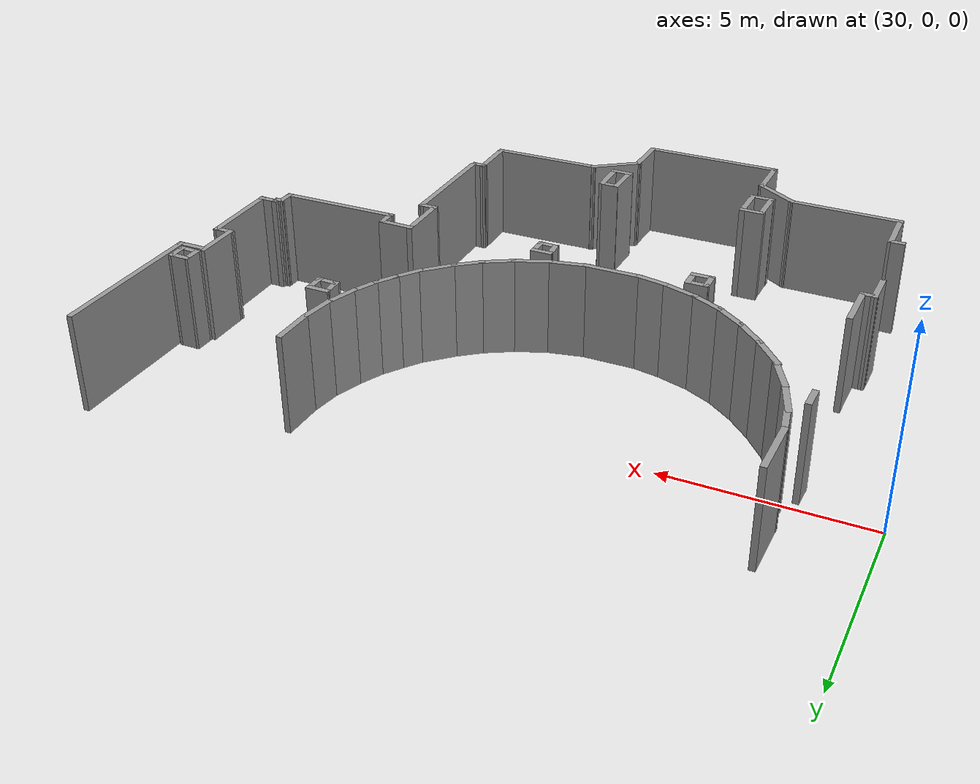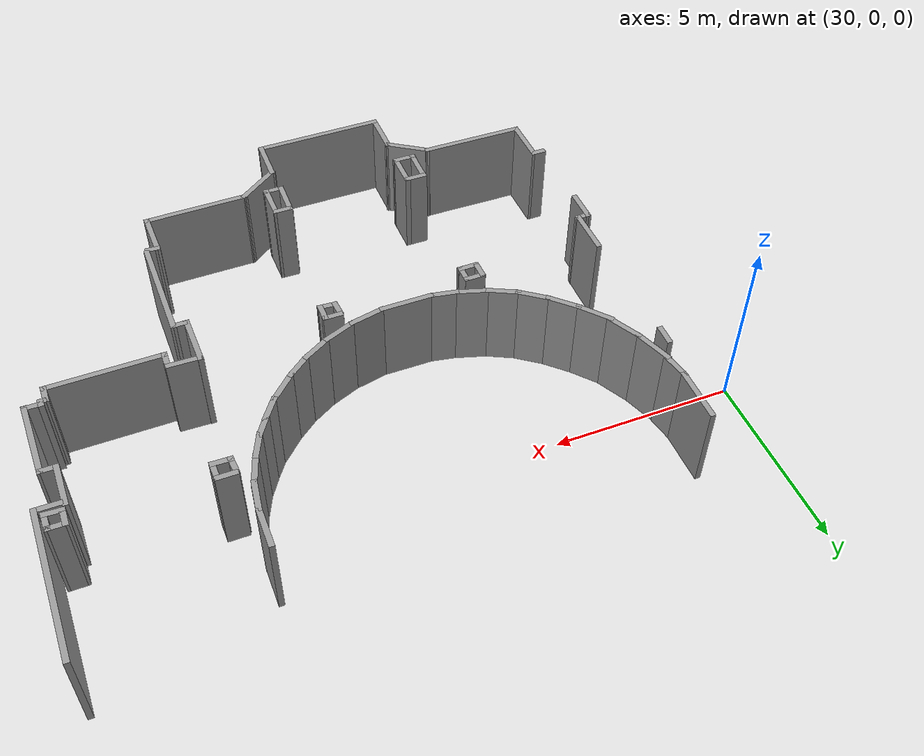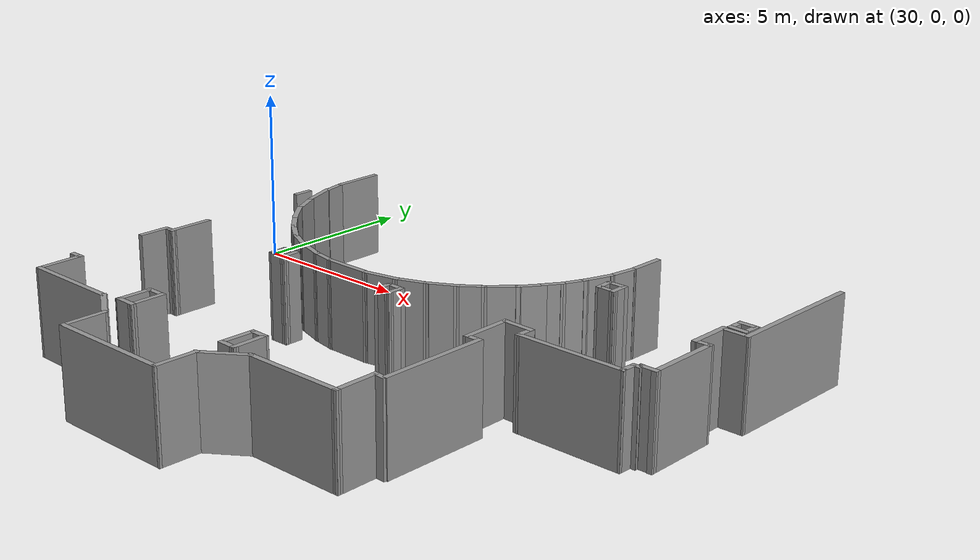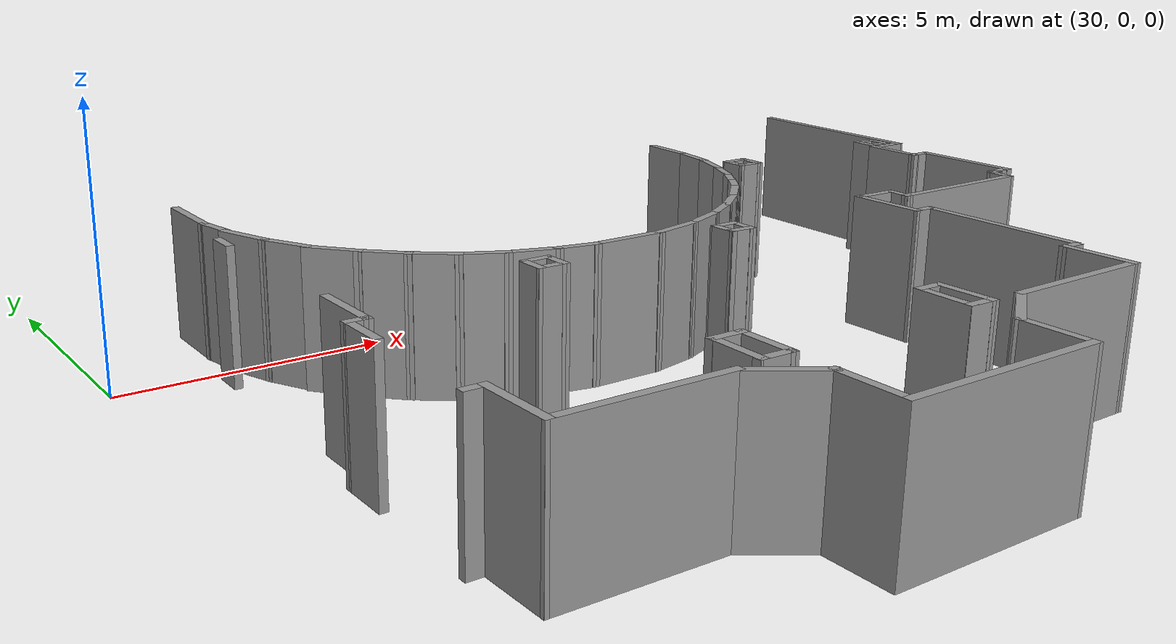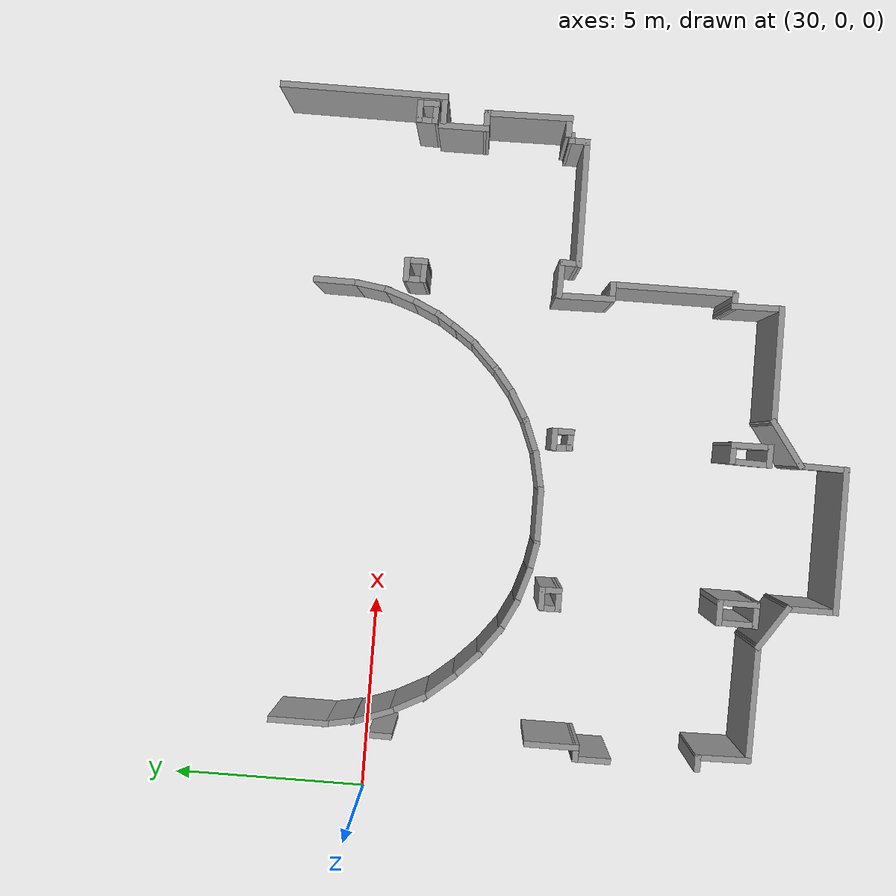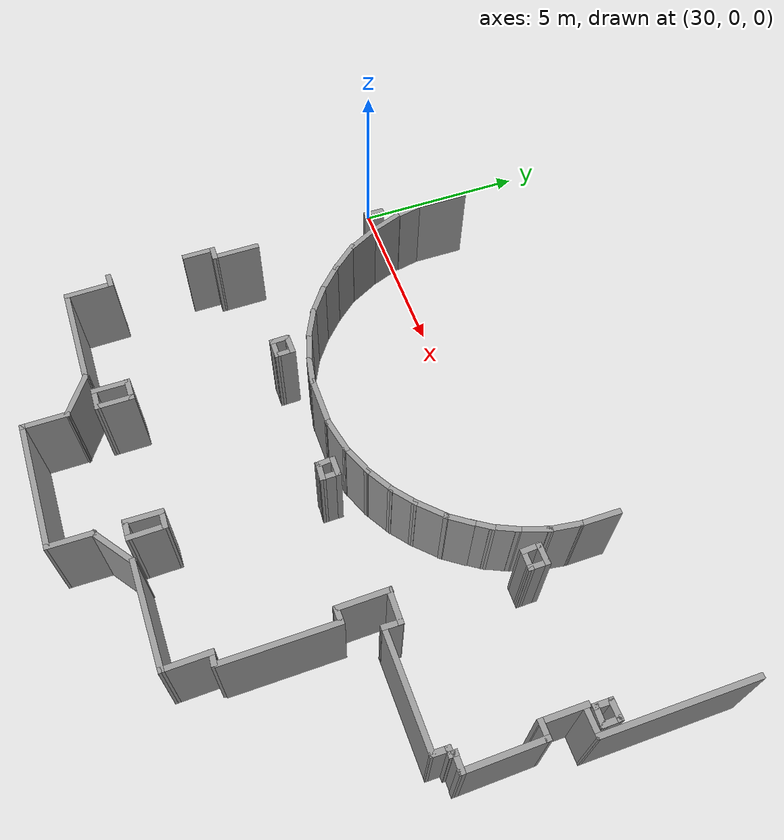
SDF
<sdf version="1.7">
 <model name="TD1-Mapa">
  <pose>-6.249136 -5.50363 0 0 -0 0</pose>
  <link name="Wall_593">
   <collision name="Wall_593_Collision">
    <geometry><box><size>1.372032 0.15 2.5</size></box></geometry>
    <pose>0 0 1.25 0 -0 0</pose>
   </collision>
   <visual name="Wall_593_Visual">
    <pose>0 0 1.25 0 -0 0</pose>
    <geometry><box><size>1.372032 0.15 2.5</size></box></geometry>
    <material>
     <script><uri>file://media/materials/scripts/gazebo.material</uri><name>Gazebo/Grey</name></script>
     <ambient>1 1 1 1</ambient>
    </material>
    <meta><layer>0</layer></meta>
   </visual>
   <pose>38.25353 0.7369343 0 0 -0 -1.57083</pose>
  </link>
  <link name="Wall_594">
   <collision name="Wall_594_Collision">
    <geometry><box><size>0.43123033 0.15 2.5</size></box></geometry>
    <pose>0 0 1.25 0 -0 0</pose>
   </collision>
   <visual name="Wall_594_Visual">
    <pose>0 0 1.25 0 -0 0</pose>
    <geometry><box><size>0.43123033 0.15 2.5</size></box></geometry>
    <material>
     <script><uri>file://media/materials/scripts/gazebo.material</uri><name>Gazebo/Grey</name></script>
     <ambient>1 1 1 1</ambient>
    </material>
    <meta><layer>0</layer></meta>
   </visual>
   <pose>38.11253 0.1288373 0 0 -0 3.120736</pose>
  </link>
  <link name="Wall_595">
   <collision name="Wall_595_Collision">
    <geometry><box><size>0.9607363 0.15 2.5</size></box></geometry>
    <pose>0 0 1.25 0 -0 0</pose>
   </collision>
   <visual name="Wall_595_Visual">
    <pose>0 0 1.25 0 -0 0</pose>
    <geometry><box><size>0.9607363 0.15 2.5</size></box></geometry>
    <material>
     <script><uri>file://media/materials/scripts/gazebo.material</uri><name>Gazebo/Grey</name></script>
     <ambient>1 1 1 1</ambient>
    </material>
    <meta><layer>0</layer></meta>
   </visual>
   <pose>37.97153 -0.2735373 0 0 -0 -1.57083</pose>
  </link>
  <link name="Wall_634">
   <collision name="Wall_634_Collision">
    <geometry><box><size>4.180331 0.15 2.5</size></box></geometry>
    <pose>0 0 1.25 0 -0 0</pose>
   </collision>
   <visual name="Wall_634_Visual">
    <pose>0 0 1.25 0 -0 0</pose>
    <geometry><box><size>4.180331 0.15 2.5</size></box></geometry>
    <material>
     <script><uri>file://media/materials/scripts/gazebo.material</uri><name>Gazebo/Grey</name></script>
     <ambient>1 1 1 1</ambient>
    </material>
    <meta><layer>0</layer></meta>
   </visual>
   <pose>54.08333 6.601134 0 0 -0 -1.573731</pose>
  </link>
  <link name="Wall_635">
   <collision name="Wall_635_Collision">
    <geometry><box><size>0.75 0.15 2.5</size></box></geometry>
    <pose>0 0 1.25 0 -0 0</pose>
   </collision>
   <visual name="Wall_635_Visual">
    <pose>0 0 1.25 0 -0 0</pose>
    <geometry><box><size>0.75 0.15 2.5</size></box></geometry>
    <material>
     <script><uri>file://media/materials/scripts/gazebo.material</uri><name>Gazebo/Grey</name></script>
     <ambient>1 1 1 1</ambient>
    </material>
    <meta><layer>0</layer></meta>
   </visual>
   <pose>53.77743 4.585939 0 0 -0 3.141539</pose>
  </link>
  <link name="Wall_637">
   <collision name="Wall_637_Collision">
    <geometry><box><size>1.269238 0.15 2.5</size></box></geometry>
    <pose>0 0 1.25 0 -0 0</pose>
   </collision>
   <visual name="Wall_637_Visual">
    <pose>0 0 1.25 0 -0 0</pose>
    <geometry><box><size>1.269238 0.15 2.5</size></box></geometry>
    <material>
     <script><uri>file://media/materials/scripts/gazebo.material</uri><name>Gazebo/Grey</name></script>
     <ambient>1 1 1 1</ambient>
    </material>
    <meta><layer>0</layer></meta>
   </visual>
   <pose>53.36673 4.0743393 0 0 -0 -1.57083</pose>
  </link>
  <link name="Wall_638">
   <collision name="Wall_638_Collision">
    <geometry><box><size>0.5352333 0.15 2.5</size></box></geometry>
    <pose>0 0 1.25 0 -0 0</pose>
   </collision>
   <visual name="Wall_638_Visual">
    <pose>0 0 1.25 0 -0 0</pose>
    <geometry><box><size>0.5352333 0.15 2.5</size></box></geometry>
    <material>
     <script><uri>file://media/materials/scripts/gazebo.material</uri><name>Gazebo/Grey</name></script>
     <ambient>1 1 1 1</ambient>
    </material>
    <meta><layer>0</layer></meta>
   </visual>
   <pose>53.55933 3.51533 0 0 -0 0.0040313</pose>
  </link>
  <link name="Wall_639">
   <collision name="Wall_639_Collision">
    <geometry><box><size>2.206431 0.15 2.5</size></box></geometry>
    <pose>0 0 1.25 0 -0 0</pose>
   </collision>
   <visual name="Wall_639_Visual">
    <pose>0 0 1.25 0 -0 0</pose>
    <geometry><box><size>2.206431 0.15 2.5</size></box></geometry>
    <material>
     <script><uri>file://media/materials/scripts/gazebo.material</uri><name>Gazebo/Grey</name></script>
     <ambient>1 1 1 1</ambient>
    </material>
    <meta><layer>0</layer></meta>
   </visual>
   <pose>53.76373 2.487934 0 0 -0 -1.559337</pose>
  </link>
  <link name="Wall_641">
   <collision name="Wall_641_Collision">
    <geometry><box><size>0.5379333 0.15 2.5</size></box></geometry>
    <pose>0 0 1.25 0 -0 0</pose>
   </collision>
   <visual name="Wall_641_Visual">
    <pose>0 0 1.25 0 -0 0</pose>
    <geometry><box><size>0.5379333 0.15 2.5</size></box></geometry>
    <material>
     <script><uri>file://media/materials/scripts/gazebo.material</uri><name>Gazebo/Grey</name></script>
     <ambient>1 1 1 1</ambient>
    </material>
    <meta><layer>0</layer></meta>
   </visual>
   <pose>53.58163 1.471535 0 0 -0 3.141539</pose>
  </link>
  <link name="Wall_643">
   <collision name="Wall_643_Collision">
    <geometry><box><size>0.2473333 0.15 2.5</size></box></geometry>
    <pose>0 0 1.25 0 -0 0</pose>
   </collision>
   <visual name="Wall_643_Visual">
    <pose>0 0 1.25 0 -0 0</pose>
    <geometry><box><size>0.2473333 0.15 2.5</size></box></geometry>
    <material>
     <script><uri>file://media/materials/scripts/gazebo.material</uri><name>Gazebo/Grey</name></script>
     <ambient>1 1 1 1</ambient>
    </material>
    <meta><layer>0</layer></meta>
   </visual>
   <pose>53.36713 1.4311373 0 0 -0 -1.57083</pose>
  </link>
  <link name="Wall_644">
   <collision name="Wall_644_Collision">
    <geometry><box><size>0.2845333 0.15 2.5</size></box></geometry>
    <pose>0 0 1.25 0 -0 0</pose>
   </collision>
   <visual name="Wall_644_Visual">
    <pose>0 0 1.25 0 -0 0</pose>
    <geometry><box><size>0.2845333 0.15 2.5</size></box></geometry>
    <material>
     <script><uri>file://media/materials/scripts/gazebo.material</uri><name>Gazebo/Grey</name></script>
     <ambient>1 1 1 1</ambient>
    </material>
    <meta><layer>0</layer></meta>
   </visual>
   <pose>53.29993 1.384735 0 0 -0 -3.091633</pose>
  </link>
  <link name="Wall_645">
   <collision name="Wall_645_Collision">
    <geometry><box><size>0.5331373 0.15 2.5</size></box></geometry>
    <pose>0 0 1.25 0 -0 0</pose>
   </collision>
   <visual name="Wall_645_Visual">
    <pose>0 0 1.25 0 -0 0</pose>
    <geometry><box><size>0.5331373 0.15 2.5</size></box></geometry>
    <material>
     <script><uri>file://media/materials/scripts/gazebo.material</uri><name>Gazebo/Grey</name></script>
     <ambient>1 1 1 1</ambient>
    </material>
    <meta><layer>0</layer></meta>
   </visual>
   <pose>53.22933 1.189932 0 0 -0 -1.588334</pose>
  </link>
  <link name="Wall_646">
   <collision name="Wall_646_Collision">
    <geometry><box><size>3.179937 0.15 2.5</size></box></geometry>
    <pose>0 0 1.25 0 -0 0</pose>
   </collision>
   <visual name="Wall_646_Visual">
    <pose>0 0 1.25 0 -0 0</pose>
    <geometry><box><size>3.179937 0.15 2.5</size></box></geometry>
    <material>
     <script><uri>file://media/materials/scripts/gazebo.material</uri><name>Gazebo/Grey</name></script>
     <ambient>1 1 1 1</ambient>
    </material>
    <meta><layer>0</layer></meta>
   </visual>
   <pose>51.711 0.9883373 0 0 -0 -3.134934</pose>
  </link>
  <link name="Wall_647">
   <collision name="Wall_647_Collision">
    <geometry><box><size>0.5331373 0.15 2.5</size></box></geometry>
    <pose>0 0 1.25 0 -0 0</pose>
   </collision>
   <visual name="Wall_647_Visual">
    <pose>0 0 1.25 0 -0 0</pose>
    <geometry><box><size>0.5331373 0.15 2.5</size></box></geometry>
    <material>
     <script><uri>file://media/materials/scripts/gazebo.material</uri><name>Gazebo/Grey</name></script>
     <ambient>1 1 1 1</ambient>
    </material>
    <meta><layer>0</layer></meta>
   </visual>
   <pose>50.20283 1.169737 0 0 -0 1.535732</pose>
  </link>
  <link name="Wall_651">
   <collision name="Wall_651_Collision">
    <geometry><box><size>0.43143333 0.15 2.5</size></box></geometry>
    <pose>0 0 1.25 0 -0 0</pose>
   </collision>
   <visual name="Wall_651_Visual">
    <pose>0 0 1.25 0 -0 0</pose>
    <geometry><box><size>0.43143333 0.15 2.5</size></box></geometry>
    <material>
     <script><uri>file://media/materials/scripts/gazebo.material</uri><name>Gazebo/Grey</name></script>
     <ambient>1 1 1 1</ambient>
    </material>
    <meta><layer>0</layer></meta>
   </visual>
   <pose>38.09973 -2.902133 0 0 -0 0</pose>
  </link>
  <link name="Wall_652">
   <collision name="Wall_652_Collision">
    <geometry><box><size>1.394 0.15 2.5</size></box></geometry>
    <pose>0 0 1.25 0 -0 0</pose>
   </collision>
   <visual name="Wall_652_Visual">
    <pose>0 0 1.25 0 -0 0</pose>
    <geometry><box><size>1.394 0.15 2.5</size></box></geometry>
    <material>
     <script><uri>file://media/materials/scripts/gazebo.material</uri><name>Gazebo/Grey</name></script>
     <ambient>1 1 1 1</ambient>
    </material>
    <meta><layer>0</layer></meta>
   </visual>
   <pose>38.25083 -3.524037 0 0 -0 -1.556531</pose>
  </link>
  <link name="Wall_653">
   <collision name="Wall_653_Collision">
    <geometry><box><size>2.975539 0.15 2.5</size></box></geometry>
    <pose>0 0 1.25 0 -0 0</pose>
   </collision>
   <visual name="Wall_653_Visual">
    <pose>0 0 1.25 0 -0 0</pose>
    <geometry><box><size>2.975539 0.15 2.5</size></box></geometry>
    <material>
     <script><uri>file://media/materials/scripts/gazebo.material</uri><name>Gazebo/Grey</name></script>
     <ambient>1 1 1 1</ambient>
    </material>
    <meta><layer>0</layer></meta>
   </visual>
   <pose>39.67233 -4.163738 0 0 -0 -0.0125373</pose>
  </link>
  <link name="Wall_654">
   <collision name="Wall_654_Collision">
    <geometry><box><size>1.352537 0.15 2.5</size></box></geometry>
    <pose>0 0 1.25 0 -0 0</pose>
   </collision>
   <visual name="Wall_654_Visual">
    <pose>0 0 1.25 0 -0 0</pose>
    <geometry><box><size>1.352537 0.15 2.5</size></box></geometry>
    <material>
     <script><uri>file://media/materials/scripts/gazebo.material</uri><name>Gazebo/Grey</name></script>
     <ambient>1 1 1 1</ambient>
    </material>
    <meta><layer>0</layer></meta>
   </visual>
   <pose>41.58263 -4.519137 0 0 -0 -0.5961393</pose>
  </link>
  <link name="Wall_655">
   <collision name="Wall_655_Collision">
    <geometry><box><size>1.322739 0.15 2.5</size></box></geometry>
    <pose>0 0 1.25 0 -0 0</pose>
   </collision>
   <visual name="Wall_655_Visual">
    <pose>0 0 1.25 0 -0 0</pose>
    <geometry><box><size>1.322739 0.15 2.5</size></box></geometry>
    <material>
     <script><uri>file://media/materials/scripts/gazebo.material</uri><name>Gazebo/Grey</name></script>
     <ambient>1 1 1 1</ambient>
    </material>
    <meta><layer>0</layer></meta>
   </visual>
   <pose>42.08013 -5.443139 0 0 -0 -1.57083</pose>
  </link>
  <link name="Wall_656">
   <collision name="Wall_656_Collision">
    <geometry><box><size>3.686135 0.15 2.5</size></box></geometry>
    <pose>0 0 1.25 0 -0 0</pose>
   </collision>
   <visual name="Wall_656_Visual">
    <pose>0 0 1.25 0 -0 0</pose>
    <geometry><box><size>3.686135 0.15 2.5</size></box></geometry>
    <material>
     <script><uri>file://media/materials/scripts/gazebo.material</uri><name>Gazebo/Grey</name></script>
     <ambient>1 1 1 1</ambient>
    </material>
    <meta><layer>0</layer></meta>
   </visual>
   <pose>43.84823 -6.029539 0 0 -0 0</pose>
  </link>
  <link name="Wall_657">
   <collision name="Wall_657_Collision">
    <geometry><box><size>1.28743 0.15 2.5</size></box></geometry>
    <pose>0 0 1.25 0 -0 0</pose>
   </collision>
   <visual name="Wall_657_Visual">
    <pose>0 0 1.25 0 -0 0</pose>
    <geometry><box><size>1.28743 0.15 2.5</size></box></geometry>
    <material>
     <script><uri>file://media/materials/scripts/gazebo.material</uri><name>Gazebo/Grey</name></script>
     <ambient>1 1 1 1</ambient>
    </material>
    <meta><layer>0</layer></meta>
   </visual>
   <pose>45.62523 -5.460936 0 0 -0 1.555137</pose>
  </link>
  <link name="Wall_658">
   <collision name="Wall_658_Collision">
    <geometry><box><size>1.422438 0.15 2.5</size></box></geometry>
    <pose>0 0 1.25 0 -0 0</pose>
   </collision>
   <visual name="Wall_658_Visual">
    <pose>0 0 1.25 0 -0 0</pose>
    <geometry><box><size>1.422438 0.15 2.5</size></box></geometry>
    <material>
     <script><uri>file://media/materials/scripts/gazebo.material</uri><name>Gazebo/Grey</name></script>
     <ambient>1 1 1 1</ambient>
    </material>
    <meta><layer>0</layer></meta>
   </visual>
   <pose>46.14943 -4.519137 0 0 -0 0.6267343</pose>
  </link>
  <link name="Wall_659">
   <collision name="Wall_659_Collision">
    <geometry><box><size>2.957636 0.15 2.5</size></box></geometry>
    <pose>0 0 1.25 0 -0 0</pose>
   </collision>
   <visual name="Wall_659_Visual">
    <pose>0 0 1.25 0 -0 0</pose>
    <geometry><box><size>2.957636 0.15 2.5</size></box></geometry>
    <material>
     <script><uri>file://media/materials/scripts/gazebo.material</uri><name>Gazebo/Grey</name></script>
     <ambient>1 1 1 1</ambient>
    </material>
    <meta><layer>0</layer></meta>
   </visual>
   <pose>48.06853 -4.137132 0 0 -0 0.0063323</pose>
  </link>
  <link name="Wall_660">
   <collision name="Wall_660_Collision">
    <geometry><box><size>1.340537 0.15 2.5</size></box></geometry>
    <pose>0 0 1.25 0 -0 0</pose>
   </collision>
   <visual name="Wall_660_Visual">
    <pose>0 0 1.25 0 -0 0</pose>
    <geometry><box><size>1.340537 0.15 2.5</size></box></geometry>
    <material>
     <script><uri>file://media/materials/scripts/gazebo.material</uri><name>Gazebo/Grey</name></script>
     <ambient>1 1 1 1</ambient>
    </material>
    <meta><layer>0</layer></meta>
   </visual>
   <pose>49.46343 -3.532935 0 0 -0 1.585732</pose>
  </link>
  <link name="Wall_661">
   <collision name="Wall_661_Collision">
    <geometry><box><size>0.4171333 0.15 2.5</size></box></geometry>
    <pose>0 0 1.25 0 -0 0</pose>
   </collision>
   <visual name="Wall_661_Visual">
    <pose>0 0 1.25 0 -0 0</pose>
    <geometry><box><size>0.4171333 0.15 2.5</size></box></geometry>
    <material>
     <script><uri>file://media/materials/scripts/gazebo.material</uri><name>Gazebo/Grey</name></script>
     <ambient>1 1 1 1</ambient>
    </material>
    <meta><layer>0</layer></meta>
   </visual>
   <pose>49.58783 -2.946536 0 0 -0 -0.0665363</pose>
  </link>
  <link name="Wall_663">
   <collision name="Wall_663_Collision">
    <geometry><box><size>0.949833 0.15 2.5</size></box></geometry>
    <pose>0 0 1.25 0 -0 0</pose>
   </collision>
   <visual name="Wall_663_Visual">
    <pose>0 0 1.25 0 -0 0</pose>
    <geometry><box><size>0.949833 0.15 2.5</size></box></geometry>
    <material>
     <script><uri>file://media/materials/scripts/gazebo.material</uri><name>Gazebo/Grey</name></script>
     <ambient>1 1 1 1</ambient>
    </material>
    <meta><layer>0</layer></meta>
   </visual>
   <pose>49.80173 1.392838 0 0 -0 -0.0222313</pose>
  </link>
  <link name="Wall_665">
   <collision name="Wall_665_Collision">
    <geometry><box><size>1.482834 0.15 2.5</size></box></geometry>
    <pose>0 0 1.25 0 -0 0</pose>
   </collision>
   <visual name="Wall_665_Visual">
    <pose>0 0 1.25 0 -0 0</pose>
    <geometry><box><size>1.482834 0.15 2.5</size></box></geometry>
    <material>
     <script><uri>file://media/materials/scripts/gazebo.material</uri><name>Gazebo/Grey</name></script>
     <ambient>1 1 1 1</ambient>
    </material>
    <meta><layer>0</layer></meta>
   </visual>
   <pose>49.39233 0.7495323 0 0 -0 -1.557436</pose>
  </link>
  <link name="Wall_666">
   <collision name="Wall_666_Collision">
    <geometry><box><size>0.5053393 0.15 2.5</size></box></geometry>
    <pose>0 0 1.25 0 -0 0</pose>
   </collision>
   <visual name="Wall_666_Visual">
    <pose>0 0 1.25 0 -0 0</pose>
    <geometry><box><size>0.5053393 0.15 2.5</size></box></geometry>
    <material>
     <script><uri>file://media/materials/scripts/gazebo.material</uri><name>Gazebo/Grey</name></script>
     <ambient>1 1 1 1</ambient>
    </material>
    <meta><layer>0</layer></meta>
   </visual>
   <pose>49.57893 0.0831363 0 0 -0 0</pose>
  </link>
  <link name="Wall_667">
   <collision name="Wall_667_Collision">
    <geometry><box><size>3.117533 0.15 2.5</size></box></geometry>
    <pose>0 0 1.25 0 -0 0</pose>
   </collision>
   <visual name="Wall_667_Visual">
    <pose>0 0 1.25 0 -0 0</pose>
    <geometry><box><size>3.117533 0.15 2.5</size></box></geometry>
    <material>
     <script><uri>file://media/materials/scripts/gazebo.material</uri><name>Gazebo/Grey</name></script>
     <ambient>1 1 1 1</ambient>
    </material>
    <meta><layer>0</layer></meta>
   </visual>
   <pose>49.75663 -1.40063 0 0 -0 -1.57083</pose>
  </link>
  <link name="Wall_669">
   <collision name="Wall_669_Collision">
    <geometry><box><size>0.6579393 0.15 2.5</size></box></geometry>
    <pose>0 0 1.25 0 -0 0</pose>
   </collision>
   <visual name="Wall_669_Visual">
    <pose>0 0 1.25 0 -0 0</pose>
    <geometry><box><size>0.6579393 0.15 2.5</size></box></geometry>
    <material>
     <script><uri>file://media/materials/scripts/gazebo.material</uri><name>Gazebo/Grey</name></script>
     <ambient>1 1 1 1</ambient>
    </material>
    <meta><layer>0</layer></meta>
   </visual>
   <pose>41.85793 -3.16043 0 0 -0 0</pose>
  </link>
  <link name="Wall_670">
   <collision name="Wall_670_Collision">
    <geometry><box><size>1.064839 0.15 2.5</size></box></geometry>
    <pose>0 0 1.25 0 -0 0</pose>
   </collision>
   <visual name="Wall_670_Visual">
    <pose>0 0 1.25 0 -0 0</pose>
    <geometry><box><size>1.064839 0.15 2.5</size></box></geometry>
    <material>
     <script><uri>file://media/materials/scripts/gazebo.material</uri><name>Gazebo/Grey</name></script>
     <ambient>1 1 1 1</ambient>
    </material>
    <meta><layer>0</layer></meta>
   </visual>
   <pose>42.11193 -3.617539 0 0 -0 -1.57083</pose>
  </link>
  <link name="Wall_671">
   <collision name="Wall_671_Collision">
    <geometry><box><size>0.6682353 0.15 2.5</size></box></geometry>
    <pose>0 0 1.25 0 -0 0</pose>
   </collision>
   <visual name="Wall_671_Visual">
    <pose>0 0 1.25 0 -0 0</pose>
    <geometry><box><size>0.6682353 0.15 2.5</size></box></geometry>
    <material>
     <script><uri>file://media/materials/scripts/gazebo.material</uri><name>Gazebo/Grey</name></script>
     <ambient>1 1 1 1</ambient>
    </material>
    <meta><layer>0</layer></meta>
   </visual>
   <pose>41.85283 -4.069731 0 0 -0 3.121939</pose>
  </link>
  <link name="Wall_672">
   <collision name="Wall_672_Collision">
    <geometry><box><size>0.9933323 0.15 2.5</size></box></geometry>
    <pose>0 0 1.25 0 -0 0</pose>
   </collision>
   <visual name="Wall_672_Visual">
    <pose>0 0 1.25 0 -0 0</pose>
    <geometry><box><size>0.9933323 0.15 2.5</size></box></geometry>
    <material>
     <script><uri>file://media/materials/scripts/gazebo.material</uri><name>Gazebo/Grey</name></script>
     <ambient>1 1 1 1</ambient>
    </material>
    <meta><layer>0</layer></meta>
   </visual>
   <pose>41.609 -3.642939 0 0 -0 1.558735</pose>
  </link>
  <link name="Wall_674">
   <collision name="Wall_674_Collision">
    <geometry><box><size>0.5869393 0.15 2.5</size></box></geometry>
    <pose>0 0 1.25 0 -0 0</pose>
   </collision>
   <visual name="Wall_674_Visual">
    <pose>0 0 1.25 0 -0 0</pose>
    <geometry><box><size>0.5869393 0.15 2.5</size></box></geometry>
    <material>
     <script><uri>file://media/materials/scripts/gazebo.material</uri><name>Gazebo/Grey</name></script>
     <ambient>1 1 1 1</ambient>
    </material>
    <meta><layer>0</layer></meta>
   </visual>
   <pose>45.81523 -4.110334 0 0 -0 -0.0232353</pose>
  </link>
  <link name="Wall_675">
   <collision name="Wall_675_Collision">
    <geometry><box><size>1.064631 0.15 2.5</size></box></geometry>
    <pose>0 0 1.25 0 -0 0</pose>
   </collision>
   <visual name="Wall_675_Visual">
    <pose>0 0 1.25 0 -0 0</pose>
    <geometry><box><size>1.064631 0.15 2.5</size></box></geometry>
    <material>
     <script><uri>file://media/materials/scripts/gazebo.material</uri><name>Gazebo/Grey</name></script>
     <ambient>1 1 1 1</ambient>
    </material>
    <meta><layer>0</layer></meta>
   </visual>
   <pose>46.02853 -3.658233 0 0 -0 1.581931</pose>
  </link>
  <link name="Wall_676">
   <collision name="Wall_676_Collision">
    <geometry><box><size>0.5463363 0.15 2.5</size></box></geometry>
    <pose>0 0 1.25 0 -0 0</pose>
   </collision>
   <visual name="Wall_676_Visual">
    <pose>0 0 1.25 0 -0 0</pose>
    <geometry><box><size>0.5463363 0.15 2.5</size></box></geometry>
    <material>
     <script><uri>file://media/materials/scripts/gazebo.material</uri><name>Gazebo/Grey</name></script>
     <ambient>1 1 1 1</ambient>
    </material>
    <meta><layer>0</layer></meta>
   </visual>
   <pose>45.82533 -3.195936 0 0 -0 3.115936</pose>
  </link>
  <link name="Wall_677">
   <collision name="Wall_677_Collision">
    <geometry><box><size>1.054435 0.15 2.5</size></box></geometry>
    <pose>0 0 1.25 0 -0 0</pose>
   </collision>
   <visual name="Wall_677_Visual">
    <pose>0 0 1.25 0 -0 0</pose>
    <geometry><box><size>1.054435 0.15 2.5</size></box></geometry>
    <material>
     <script><uri>file://media/materials/scripts/gazebo.material</uri><name>Gazebo/Grey</name></script>
     <ambient>1 1 1 1</ambient>
    </material>
    <meta><layer>0</layer></meta>
   </visual>
   <pose>45.60693 -3.642939 0 0 -0 -1.593236</pose>
  </link>
  <link name="Wall_689">
   <collision name="Wall_689_Collision">
    <geometry><box><size>1.51523 0.15 2.5</size></box></geometry>
    <pose>0 0 1.25 0 -0 0</pose>
   </collision>
   <visual name="Wall_689_Visual">
    <pose>0 0 1.25 0 -0 0</pose>
    <geometry><box><size>1.51523 0.15 2.5</size></box></geometry>
    <material>
     <script><uri>file://media/materials/scripts/gazebo.material</uri><name>Gazebo/Grey</name></script>
     <ambient>1 1 1 1</ambient>
    </material>
    <meta><layer>0</layer></meta>
   </visual>
   <pose>38.37753 7.042533 0 0 -0 -1.574935</pose>
  </link>
  <link name="Wall_690">
   <collision name="Wall_690_Collision">
    <geometry><box><size>0.791031 0.15 2.5</size></box></geometry>
    <pose>0 0 1.25 0 -0 0</pose>
   </collision>
   <visual name="Wall_690_Visual">
    <pose>0 0 1.25 0 -0 0</pose>
    <geometry><box><size>0.791031 0.15 2.5</size></box></geometry>
    <material>
     <script><uri>file://media/materials/scripts/gazebo.material</uri><name>Gazebo/Grey</name></script>
     <ambient>1 1 1 1</ambient>
    </material>
    <meta><layer>0</layer></meta>
   </visual>
   <pose>38.43173 6.045535 0 0 -0 -1.375133</pose>
  </link>
  <link name="Wall_692">
   <collision name="Wall_692_Collision">
    <geometry><box><size>1.124732 0.15 2.5</size></box></geometry>
    <pose>0 0 1.25 0 -0 0</pose>
   </collision>
   <visual name="Wall_692_Visual">
    <pose>0 0 1.25 0 -0 0</pose>
    <geometry><box><size>1.124732 0.15 2.5</size></box></geometry>
    <material>
     <script><uri>file://media/materials/scripts/gazebo.material</uri><name>Gazebo/Grey</name></script>
     <ambient>1 1 1 1</ambient>
    </material>
    <meta><layer>0</layer></meta>
   </visual>
   <pose>38.64093 5.227031 0 0 -0 -1.226939</pose>
  </link>
  <link name="Wall_693">
   <collision name="Wall_693_Collision">
    <geometry><box><size>1.024039 0.15 2.5</size></box></geometry>
    <pose>0 0 1.25 0 -0 0</pose>
   </collision>
   <visual name="Wall_693_Visual">
    <pose>0 0 1.25 0 -0 0</pose>
    <geometry><box><size>1.024039 0.15 2.5</size></box></geometry>
    <material>
     <script><uri>file://media/materials/scripts/gazebo.material</uri><name>Gazebo/Grey</name></script>
     <ambient>1 1 1 1</ambient>
    </material>
    <meta><layer>0</layer></meta>
   </visual>
   <pose>39.00633 4.380134 0 0 -0 -1.092636</pose>
  </link>
  <link name="Wall_695">
   <collision name="Wall_695_Collision">
    <geometry><box><size>1.062433 0.15 2.5</size></box></geometry>
    <pose>0 0 1.25 0 -0 0</pose>
   </collision>
   <visual name="Wall_695_Visual">
    <pose>0 0 1.25 0 -0 0</pose>
    <geometry><box><size>1.062433 0.15 2.5</size></box></geometry>
    <material>
     <script><uri>file://media/materials/scripts/gazebo.material</uri><name>Gazebo/Grey</name></script>
     <ambient>1 1 1 1</ambient>
    </material>
    <meta><layer>0</layer></meta>
   </visual>
   <pose>39.48493 3.626734 0 0 -0 -0.8689303</pose>
  </link>
  <link name="Wall_696">
   <collision name="Wall_696_Collision">
    <geometry><box><size>0.9792333 0.15 2.5</size></box></geometry>
    <pose>0 0 1.25 0 -0 0</pose>
   </collision>
   <visual name="Wall_696_Visual">
    <pose>0 0 1.25 0 -0 0</pose>
    <geometry><box><size>0.9792333 0.15 2.5</size></box></geometry>
    <material>
     <script><uri>file://media/materials/scripts/gazebo.material</uri><name>Gazebo/Grey</name></script>
     <ambient>1 1 1 1</ambient>
    </material>
    <meta><layer>0</layer></meta>
   </visual>
   <pose>40.074639 2.989436 0 0 -0 -0.7709303</pose>
  </link>
  <link name="Wall_697">
   <collision name="Wall_697_Collision">
    <geometry><box><size>0.9589313 0.15 2.5</size></box></geometry>
    <pose>0 0 1.25 0 -0 0</pose>
   </collision>
   <visual name="Wall_697_Visual">
    <pose>0 0 1.25 0 -0 0</pose>
    <geometry><box><size>0.9589313 0.15 2.5</size></box></geometry>
    <material>
     <script><uri>file://media/materials/scripts/gazebo.material</uri><name>Gazebo/Grey</name></script>
     <ambient>1 1 1 1</ambient>
    </material>
    <meta><layer>0</layer></meta>
   </visual>
   <pose>40.69723 2.456938 0 0 -0 -0.6463303</pose>
  </link>
  <link name="Wall_698">
   <collision name="Wall_698_Collision">
    <geometry><box><size>0.9353323 0.15 2.5</size></box></geometry>
    <pose>0 0 1.25 0 -0 0</pose>
   </collision>
   <visual name="Wall_698_Visual">
    <pose>0 0 1.25 0 -0 0</pose>
    <geometry><box><size>0.9353323 0.15 2.5</size></box></geometry>
    <material>
     <script><uri>file://media/materials/scripts/gazebo.material</uri><name>Gazebo/Grey</name></script>
     <ambient>1 1 1 1</ambient>
    </material>
    <meta><layer>0</layer></meta>
   </visual>
   <pose>41.37133 2.03783 0 0 -0 -0.4636343</pose>
  </link>
  <link name="Wall_699">
   <collision name="Wall_699_Collision">
    <geometry><box><size>1.004632 0.15 2.5</size></box></geometry>
    <pose>0 0 1.25 0 -0 0</pose>
   </collision>
   <visual name="Wall_699_Visual">
    <pose>0 0 1.25 0 -0 0</pose>
    <geometry><box><size>1.004632 0.15 2.5</size></box></geometry>
    <material>
     <script><uri>file://media/materials/scripts/gazebo.material</uri><name>Gazebo/Grey</name></script>
     <ambient>1 1 1 1</ambient>
    </material>
    <meta><layer>0</layer></meta>
   </visual>
   <pose>42.13043 1.734734 0 0 -0 -0.3028383</pose>
  </link>
  <link name="Wall_701">
   <collision name="Wall_701_Collision">
    <geometry><box><size>0.8355313 0.15 2.5</size></box></geometry>
    <pose>0 0 1.25 0 -0 0</pose>
   </collision>
   <visual name="Wall_701_Visual">
    <pose>0 0 1.25 0 -0 0</pose>
    <geometry><box><size>0.8355313 0.15 2.5</size></box></geometry>
    <material>
     <script><uri>file://media/materials/scripts/gazebo.material</uri><name>Gazebo/Grey</name></script>
     <ambient>1 1 1 1</ambient>
    </material>
    <meta><layer>0</layer></meta>
   </visual>
   <pose>42.87533 1.544937 0 0 -0 -0.182831</pose>
  </link>
  <link name="Wall_702">
   <collision name="Wall_702_Collision">
    <geometry><box><size>1.492533 0.15 2.5</size></box></geometry>
    <pose>0 0 1.25 0 -0 0</pose>
   </collision>
   <visual name="Wall_702_Visual">
    <pose>0 0 1.25 0 -0 0</pose>
    <geometry><box><size>1.492533 0.15 2.5</size></box></geometry>
    <material>
     <script><uri>file://media/materials/scripts/gazebo.material</uri><name>Gazebo/Grey</name></script>
     <ambient>1 1 1 1</ambient>
    </material>
    <meta><layer>0</layer></meta>
   </visual>
   <pose>43.88363 1.482636 0 0 -0 0</pose>
  </link>
  <link name="Wall_703">
   <collision name="Wall_703_Collision">
    <geometry><box><size>1.064333 0.15 2.5</size></box></geometry>
    <pose>0 0 1.25 0 -0 0</pose>
   </collision>
   <visual name="Wall_703_Visual">
    <pose>0 0 1.25 0 -0 0</pose>
    <geometry><box><size>1.064333 0.15 2.5</size></box></geometry>
    <material>
     <script><uri>file://media/materials/scripts/gazebo.material</uri><name>Gazebo/Grey</name></script>
     <ambient>1 1 1 1</ambient>
    </material>
    <meta><layer>0</layer></meta>
   </visual>
   <pose>45.00233 1.576133 0 0 -0 0.2059303</pose>
  </link>
  <link name="Wall_704">
   <collision name="Wall_704_Collision">
    <geometry><box><size>0.9915323 0.15 2.5</size></box></geometry>
    <pose>0 0 1.25 0 -0 0</pose>
   </collision>
   <visual name="Wall_704_Visual">
    <pose>0 0 1.25 0 -0 0</pose>
    <geometry><box><size>0.9915323 0.15 2.5</size></box></geometry>
    <material>
     <script><uri>file://media/materials/scripts/gazebo.material</uri><name>Gazebo/Grey</name></script>
     <ambient>1 1 1 1</ambient>
    </material>
    <meta><layer>0</layer></meta>
   </visual>
   <pose>45.84073 1.825337 0 0 -0 0.3792353</pose>
  </link>
  <link name="Wall_706">
   <collision name="Wall_706_Collision">
    <geometry><box><size>0.9292313 0.15 2.5</size></box></geometry>
    <pose>0 0 1.25 0 -0 0</pose>
   </collision>
   <visual name="Wall_706_Visual">
    <pose>0 0 1.25 0 -0 0</pose>
    <geometry><box><size>0.9292313 0.15 2.5</size></box></geometry>
    <material>
     <script><uri>file://media/materials/scripts/gazebo.material</uri><name>Gazebo/Grey</name></script>
     <ambient>1 1 1 1</ambient>
    </material>
    <meta><layer>0</layer></meta>
   </visual>
   <pose>46.56863 2.176538 0 0 -0 0.5254353</pose>
  </link>
  <link name="Wall_707">
   <collision name="Wall_707_Collision">
    <geometry><box><size>0.8356333 0.15 2.5</size></box></geometry>
    <pose>0 0 1.25 0 -0 0</pose>
   </collision>
   <visual name="Wall_707_Visual">
    <pose>0 0 1.25 0 -0 0</pose>
    <geometry><box><size>0.8356333 0.15 2.5</size></box></geometry>
    <material>
     <script><uri>file://media/materials/scripts/gazebo.material</uri><name>Gazebo/Grey</name></script>
     <ambient>1 1 1 1</ambient>
    </material>
    <meta><layer>0</layer></meta>
   </visual>
   <pose>47.17473 2.584434 0 0 -0 0.6682383</pose>
  </link>
  <link name="Wall_708">
   <collision name="Wall_708_Collision">
    <geometry><box><size>0.9951373 0.15 2.5</size></box></geometry>
    <pose>0 0 1.25 0 -0 0</pose>
   </collision>
   <visual name="Wall_708_Visual">
    <pose>0 0 1.25 0 -0 0</pose>
    <geometry><box><size>0.9951373 0.15 2.5</size></box></geometry>
    <material>
     <script><uri>file://media/materials/scripts/gazebo.material</uri><name>Gazebo/Grey</name></script>
     <ambient>1 1 1 1</ambient>
    </material>
    <meta><layer>0</layer></meta>
   </visual>
   <pose>47.744 3.094236 0 0 -0 0.7806353</pose>
  </link>
  <link name="Wall_709">
   <collision name="Wall_709_Collision">
    <geometry><box><size>0.8038393 0.15 2.5</size></box></geometry>
    <pose>0 0 1.25 0 -0 0</pose>
   </collision>
   <visual name="Wall_709_Visual">
    <pose>0 0 1.25 0 -0 0</pose>
    <geometry><box><size>0.8038393 0.15 2.5</size></box></geometry>
    <material>
     <script><uri>file://media/materials/scripts/gazebo.material</uri><name>Gazebo/Grey</name></script>
     <ambient>1 1 1 1</ambient>
    </material>
    <meta><layer>0</layer></meta>
   </visual>
   <pose>48.244 3.657839 0 0 -0 0.9515353</pose>
  </link>
  <link name="Wall_712">
   <collision name="Wall_712_Collision">
    <geometry><box><size>0.6449303 0.15 2.5</size></box></geometry>
    <pose>0 0 1.25 0 -0 0</pose>
   </collision>
   <visual name="Wall_712_Visual">
    <pose>0 0 1.25 0 -0 0</pose>
    <geometry><box><size>0.6449303 0.15 2.5</size></box></geometry>
    <material>
     <script><uri>file://media/materials/scripts/gazebo.material</uri><name>Gazebo/Grey</name></script>
     <ambient>1 1 1 1</ambient>
    </material>
    <meta><layer>0</layer></meta>
   </visual>
   <pose>48.55983 4.130839 0 0 -0 0.9891343</pose>
  </link>
  <link name="Wall_713">
   <collision name="Wall_713_Collision">
    <geometry><box><size>0.7786373 0.15 2.5</size></box></geometry>
    <pose>0 0 1.25 0 -0 0</pose>
   </collision>
   <visual name="Wall_713_Visual">
    <pose>0 0 1.25 0 -0 0</pose>
    <geometry><box><size>0.7786373 0.15 2.5</size></box></geometry>
    <material>
     <script><uri>file://media/materials/scripts/gazebo.material</uri><name>Gazebo/Grey</name></script>
     <ambient>1 1 1 1</ambient>
    </material>
    <meta><layer>0</layer></meta>
   </visual>
   <pose>48.826 4.623732 0 0 -0 1.143432</pose>
  </link>
  <link name="Wall_714">
   <collision name="Wall_714_Collision">
    <geometry><box><size>0.9292373 0.15 2.5</size></box></geometry>
    <pose>0 0 1.25 0 -0 0</pose>
   </collision>
   <visual name="Wall_714_Visual">
    <pose>0 0 1.25 0 -0 0</pose>
    <geometry><box><size>0.9292373 0.15 2.5</size></box></geometry>
    <material>
     <script><uri>file://media/materials/scripts/gazebo.material</uri><name>Gazebo/Grey</name></script>
     <ambient>1 1 1 1</ambient>
    </material>
    <meta><layer>0</layer></meta>
   </visual>
   <pose>49.08373 5.277939 0 0 -0 1.247535</pose>
  </link>
  <link name="Wall_715">
   <collision name="Wall_715_Collision">
    <geometry><box><size>0.9054343 0.15 2.5</size></box></geometry>
    <pose>0 0 1.25 0 -0 0</pose>
   </collision>
   <visual name="Wall_715_Visual">
    <pose>0 0 1.25 0 -0 0</pose>
    <geometry><box><size>0.9054343 0.15 2.5</size></box></geometry>
    <material>
     <script><uri>file://media/materials/scripts/gazebo.material</uri><name>Gazebo/Grey</name></script>
     <ambient>1 1 1 1</ambient>
    </material>
    <meta><layer>0</layer></meta>
   </visual>
   <pose>49.265 6.020036 0 0 -0 1.427834</pose>
  </link>
  <link name="Wall_717">
   <collision name="Wall_717_Collision">
    <geometry><box><size>1.124339 0.15 2.5</size></box></geometry>
    <pose>0 0 1.25 0 -0 0</pose>
   </collision>
   <visual name="Wall_717_Visual">
    <pose>0 0 1.25 0 -0 0</pose>
    <geometry><box><size>1.124339 0.15 2.5</size></box></geometry>
    <material>
     <script><uri>file://media/materials/scripts/gazebo.material</uri><name>Gazebo/Grey</name></script>
     <ambient>1 1 1 1</ambient>
    </material>
    <meta><layer>0</layer></meta>
   </visual>
   <pose>49.33013 6.937734 0 0 -0 1.559137</pose>
  </link>
  <link name="Wall_772">
   <collision name="Wall_772_Collision">
    <geometry><box><size>0.5929373 0.15 2.5</size></box></geometry>
    <pose>0 0 1.25 0 -0 0</pose>
   </collision>
   <visual name="Wall_772_Visual">
    <pose>0 0 1.25 0 -0 0</pose>
    <geometry><box><size>0.5929373 0.15 2.5</size></box></geometry>
    <material>
     <script><uri>file://media/materials/scripts/gazebo.material</uri><name>Gazebo/Grey</name></script>
     <ambient>1 1 1 1</ambient>
    </material>
    <meta><layer>0</layer></meta>
   </visual>
   <pose>38.17583 4.989938 0 0 -0 -1.58553</pose>
  </link>
  <link name="Wall_776">
   <collision name="Wall_776_Collision">
    <geometry><box><size>0.5734383 0.15 2.5</size></box></geometry>
    <pose>0 0 1.25 0 -0 0</pose>
   </collision>
   <visual name="Wall_776_Visual">
    <pose>0 0 1.25 0 -0 0</pose>
    <geometry><box><size>0.5734383 0.15 2.5</size></box></geometry>
    <material>
     <script><uri>file://media/materials/scripts/gazebo.material</uri><name>Gazebo/Grey</name></script>
     <ambient>1 1 1 1</ambient>
    </material>
    <meta><layer>0</layer></meta>
   </visual>
   <pose>41.876 1.260531 0 0 -0 0.0153383</pose>
  </link>
  <link name="Wall_777">
   <collision name="Wall_777_Collision">
    <geometry><box><size>0.5734333 0.15 2.5</size></box></geometry>
    <pose>0 0 1.25 0 -0 0</pose>
   </collision>
   <visual name="Wall_777_Visual">
    <pose>0 0 1.25 0 -0 0</pose>
    <geometry><box><size>0.5734333 0.15 2.5</size></box></geometry>
    <material>
     <script><uri>file://media/materials/scripts/gazebo.material</uri><name>Gazebo/Grey</name></script>
     <ambient>1 1 1 1</ambient>
    </material>
    <meta><layer>0</layer></meta>
   </visual>
   <pose>42.091 1.052035 0 0 -0 -1.555431</pose>
  </link>
  <link name="Wall_778">
   <collision name="Wall_778_Collision">
    <geometry><box><size>0.5995333 0.15 2.5</size></box></geometry>
    <pose>0 0 1.25 0 -0 0</pose>
   </collision>
   <visual name="Wall_778_Visual">
    <pose>0 0 1.25 0 -0 0</pose>
    <geometry><box><size>0.5995333 0.15 2.5</size></box></geometry>
    <material>
     <script><uri>file://media/materials/scripts/gazebo.material</uri><name>Gazebo/Grey</name></script>
     <ambient>1 1 1 1</ambient>
    </material>
    <meta><layer>0</layer></meta>
   </visual>
   <pose>41.86953 0.8403323 0 0 -0 3.141539</pose>
  </link>
  <link name="Wall_779">
   <collision name="Wall_779_Collision">
    <geometry><box><size>0.5343343 0.15 2.5</size></box></geometry>
    <pose>0 0 1.25 0 -0 0</pose>
   </collision>
   <visual name="Wall_779_Visual">
    <pose>0 0 1.25 0 -0 0</pose>
    <geometry><box><size>0.5343343 0.15 2.5</size></box></geometry>
    <material>
     <script><uri>file://media/materials/scripts/gazebo.material</uri><name>Gazebo/Grey</name></script>
     <ambient>1 1 1 1</ambient>
    </material>
    <meta><layer>0</layer></meta>
   </visual>
   <pose>41.64153 1.03253 0 0 -0 1.587734</pose>
  </link>
  <link name="Wall_781">
   <collision name="Wall_781_Collision">
    <geometry><box><size>0.5541303 0.15 2.5</size></box></geometry>
    <pose>0 0 1.25 0 -0 0</pose>
   </collision>
   <visual name="Wall_781_Visual">
    <pose>0 0 1.25 0 -0 0</pose>
    <geometry><box><size>0.5541303 0.15 2.5</size></box></geometry>
    <material>
     <script><uri>file://media/materials/scripts/gazebo.material</uri><name>Gazebo/Grey</name></script>
     <ambient>1 1 1 1</ambient>
    </material>
    <meta><layer>0</layer></meta>
   </visual>
   <pose>45.83353 1.247731 0 0 -0 0</pose>
  </link>
  <link name="Wall_782">
   <collision name="Wall_782_Collision">
    <geometry><box><size>0.5539343 0.15 2.5</size></box></geometry>
    <pose>0 0 1.25 0 -0 0</pose>
   </collision>
   <visual name="Wall_782_Visual">
    <pose>0 0 1.25 0 -0 0</pose>
    <geometry><box><size>0.5539343 0.15 2.5</size></box></geometry>
    <material>
     <script><uri>file://media/materials/scripts/gazebo.material</uri><name>Gazebo/Grey</name></script>
     <ambient>1 1 1 1</ambient>
    </material>
    <meta><layer>0</layer></meta>
   </visual>
   <pose>46.03543 1.035736 0 0 -0 -1.57083</pose>
  </link>
  <link name="Wall_783">
   <collision name="Wall_783_Collision">
    <geometry><box><size>0.5410373 0.15 2.5</size></box></geometry>
    <pose>0 0 1.25 0 -0 0</pose>
   </collision>
   <visual name="Wall_783_Visual">
    <pose>0 0 1.25 0 -0 0</pose>
    <geometry><box><size>0.5410373 0.15 2.5</size></box></geometry>
    <material>
     <script><uri>file://media/materials/scripts/gazebo.material</uri><name>Gazebo/Grey</name></script>
     <ambient>1 1 1 1</ambient>
    </material>
    <meta><layer>0</layer></meta>
   </visual>
   <pose>45.84 0.8468343 0 0 -0 3.0745303</pose>
  </link>
  <link name="Wall_784">
   <collision name="Wall_784_Collision">
    <geometry><box><size>0.4897343 0.15 2.5</size></box></geometry>
    <pose>0 0 1.25 0 -0 0</pose>
   </collision>
   <visual name="Wall_784_Visual">
    <pose>0 0 1.25 0 -0 0</pose>
    <geometry><box><size>0.4897343 0.15 2.5</size></box></geometry>
    <material>
     <script><uri>file://media/materials/scripts/gazebo.material</uri><name>Gazebo/Grey</name></script>
     <ambient>1 1 1 1</ambient>
    </material>
    <meta><layer>0</layer></meta>
   </visual>
   <pose>45.63153 1.022733 0 0 -0 1.647537</pose>
  </link>
  <link name="Wall_786">
   <collision name="Wall_786_Collision">
    <geometry><box><size>0.59453 0.15 2.5</size></box></geometry>
    <pose>0 0 1.25 0 -0 0</pose>
   </collision>
   <visual name="Wall_786_Visual">
    <pose>0 0 1.25 0 -0 0</pose>
    <geometry><box><size>0.59453 0.15 2.5</size></box></geometry>
    <material>
     <script><uri>file://media/materials/scripts/gazebo.material</uri><name>Gazebo/Grey</name></script>
     <ambient>1 1 1 1</ambient>
    </material>
    <meta><layer>0</layer></meta>
   </visual>
   <pose>49.75093 5.212732 0 0 -0 0</pose>
  </link>
  <link name="Wall_787">
   <collision name="Wall_787_Collision">
    <geometry><box><size>0.582936 0.15 2.5</size></box></geometry>
    <pose>0 0 1.25 0 -0 0</pose>
   </collision>
   <visual name="Wall_787_Visual">
    <pose>0 0 1.25 0 -0 0</pose>
    <geometry><box><size>0.582936 0.15 2.5</size></box></geometry>
    <material>
     <script><uri>file://media/materials/scripts/gazebo.material</uri><name>Gazebo/Grey</name></script>
     <ambient>1 1 1 1</ambient>
    </material>
    <meta><layer>0</layer></meta>
   </visual>
   <pose>49.97313 4.996234 0 0 -0 -1.57083</pose>
  </link>
  <link name="Wall_788">
   <collision name="Wall_788_Collision">
    <geometry><box><size>0.59453 0.15 2.5</size></box></geometry>
    <pose>0 0 1.25 0 -0 0</pose>
   </collision>
   <visual name="Wall_788_Visual">
    <pose>0 0 1.25 0 -0 0</pose>
    <geometry><box><size>0.59453 0.15 2.5</size></box></geometry>
    <material>
     <script><uri>file://media/materials/scripts/gazebo.material</uri><name>Gazebo/Grey</name></script>
     <ambient>1 1 1 1</ambient>
    </material>
    <meta><layer>0</layer></meta>
   </visual>
   <pose>49.75093 4.785436 0 0 -0 3.115936</pose>
  </link>
  <link name="Wall_789">
   <collision name="Wall_789_Collision">
    <geometry><box><size>0.5153303 0.15 2.5</size></box></geometry>
    <pose>0 0 1.25 0 -0 0</pose>
   </collision>
   <visual name="Wall_789_Visual">
    <pose>0 0 1.25 0 -0 0</pose>
    <geometry><box><size>0.5153303 0.15 2.5</size></box></geometry>
    <material>
     <script><uri>file://media/materials/scripts/gazebo.material</uri><name>Gazebo/Grey</name></script>
     <ambient>1 1 1 1</ambient>
    </material>
    <meta><layer>0</layer></meta>
   </visual>
   <pose>49.51733 4.973435 0 0 -0 1.633232</pose>
  </link>
  <link name="Wall_803">
   <collision name="Wall_803_Collision">
    <geometry><box><size>0.5569313 0.15 2.5</size></box></geometry>
    <pose>0 0 1.25 0 -0 0</pose>
   </collision>
   <visual name="Wall_803_Visual">
    <pose>0 0 1.25 0 -0 0</pose>
    <geometry><box><size>0.5569313 0.15 2.5</size></box></geometry>
    <material>
     <script><uri>file://media/materials/scripts/gazebo.material</uri><name>Gazebo/Grey</name></script>
     <ambient>1 1 1 1</ambient>
    </material>
    <meta><layer>0</layer></meta>
   </visual>
   <pose>53.67763 5.187535 0 0 -0 0</pose>
  </link>
  <link name="Wall_804">
   <collision name="Wall_804_Collision">
    <geometry><box><size>0.5611393 0.15 2.5</size></box></geometry>
    <pose>0 0 1.25 0 -0 0</pose>
   </collision>
   <visual name="Wall_804_Visual">
    <pose>0 0 1.25 0 -0 0</pose>
    <geometry><box><size>0.5611393 0.15 2.5</size></box></geometry>
    <material>
     <script><uri>file://media/materials/scripts/gazebo.material</uri><name>Gazebo/Grey</name></script>
     <ambient>1 1 1 1</ambient>
    </material>
    <meta><layer>0</layer></meta>
   </visual>
   <pose>53.88323 4.981935 0 0 -0 -1.560338</pose>
  </link>
  <link name="Wall_805">
   <collision name="Wall_805_Collision">
    <geometry><box><size>0.5740363 0.15 2.5</size></box></geometry>
    <pose>0 0 1.25 0 -0 0</pose>
   </collision>
   <visual name="Wall_805_Visual">
    <pose>0 0 1.25 0 -0 0</pose>
    <geometry><box><size>0.5740363 0.15 2.5</size></box></geometry>
    <material>
     <script><uri>file://media/materials/scripts/gazebo.material</uri><name>Gazebo/Grey</name></script>
     <ambient>1 1 1 1</ambient>
    </material>
    <meta><layer>0</layer></meta>
   </visual>
   <pose>53.67333 4.787036 0 0 -0 3.091133</pose>
  </link>
  <link name="Wall_806">
   <collision name="Wall_806_Collision">
    <geometry><box><size>0.5398303 0.15 2.5</size></box></geometry>
    <pose>0 0 1.25 0 -0 0</pose>
   </collision>
   <visual name="Wall_806_Visual">
    <pose>0 0 1.25 0 -0 0</pose>
    <geometry><box><size>0.5398303 0.15 2.5</size></box></geometry>
    <material>
     <script><uri>file://media/materials/scripts/gazebo.material</uri><name>Gazebo/Grey</name></script>
     <ambient>1 1 1 1</ambient>
    </material>
    <meta><layer>0</layer></meta>
   </visual>
   <pose>53.46343 4.992636 0 0 -0 1.559831</pose>
  </link>
  <static>1</static>
 </model>
</sdf>
